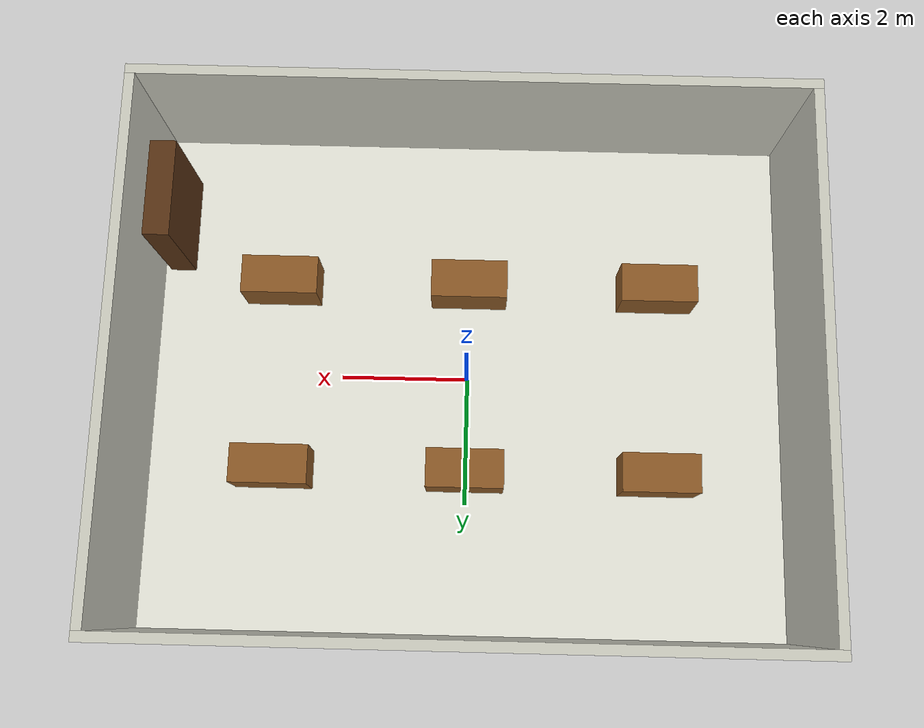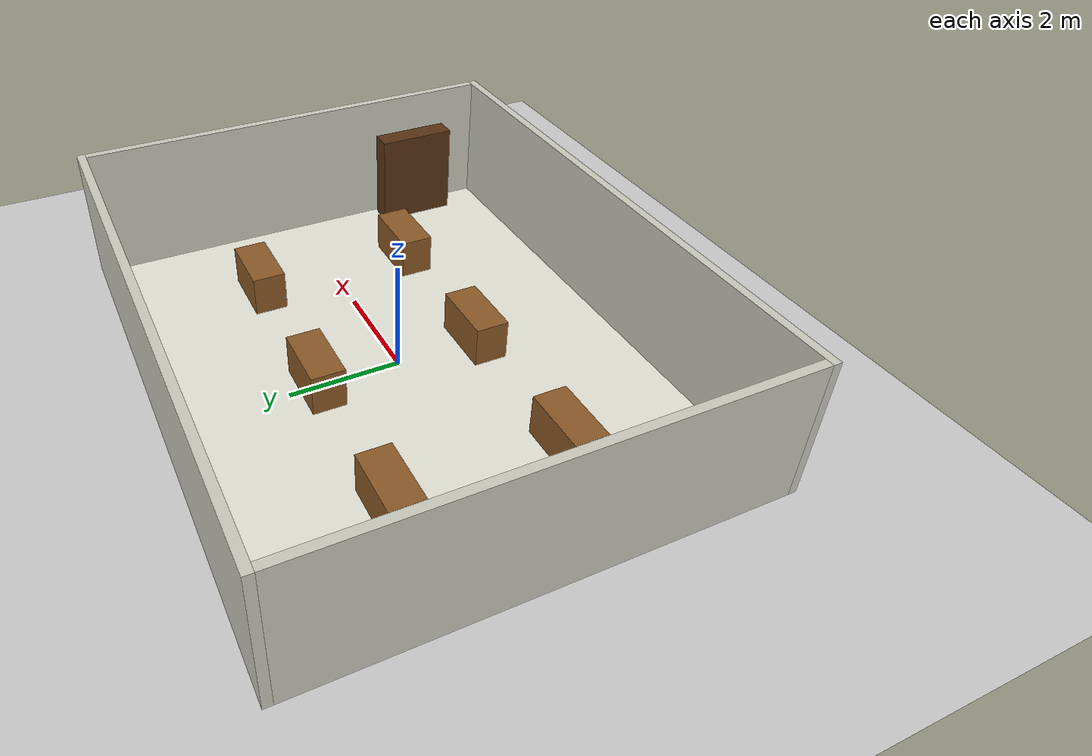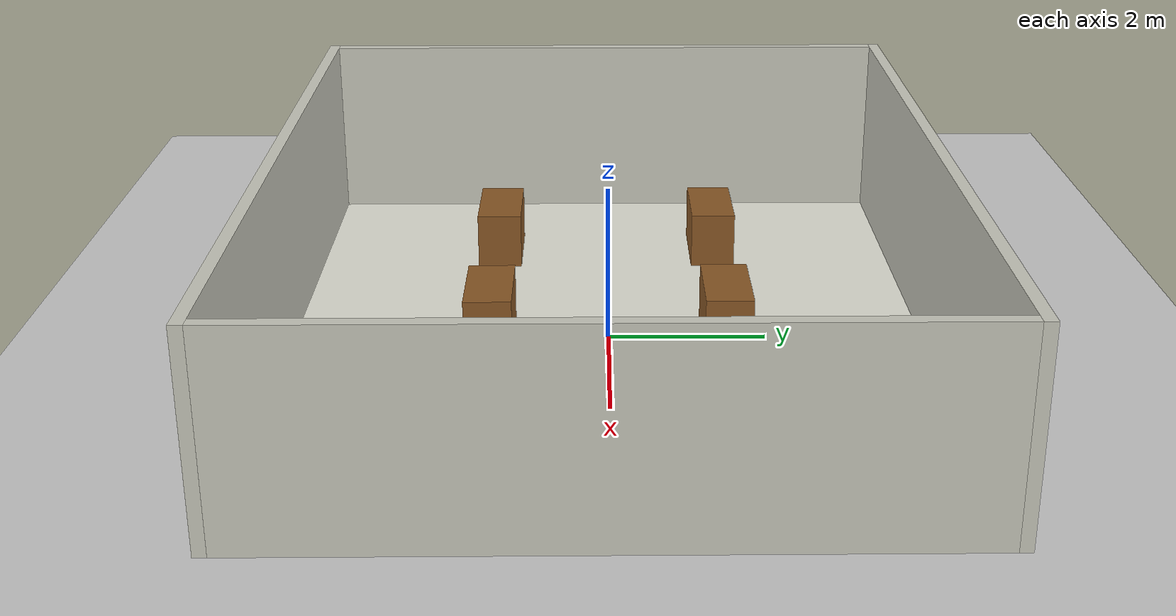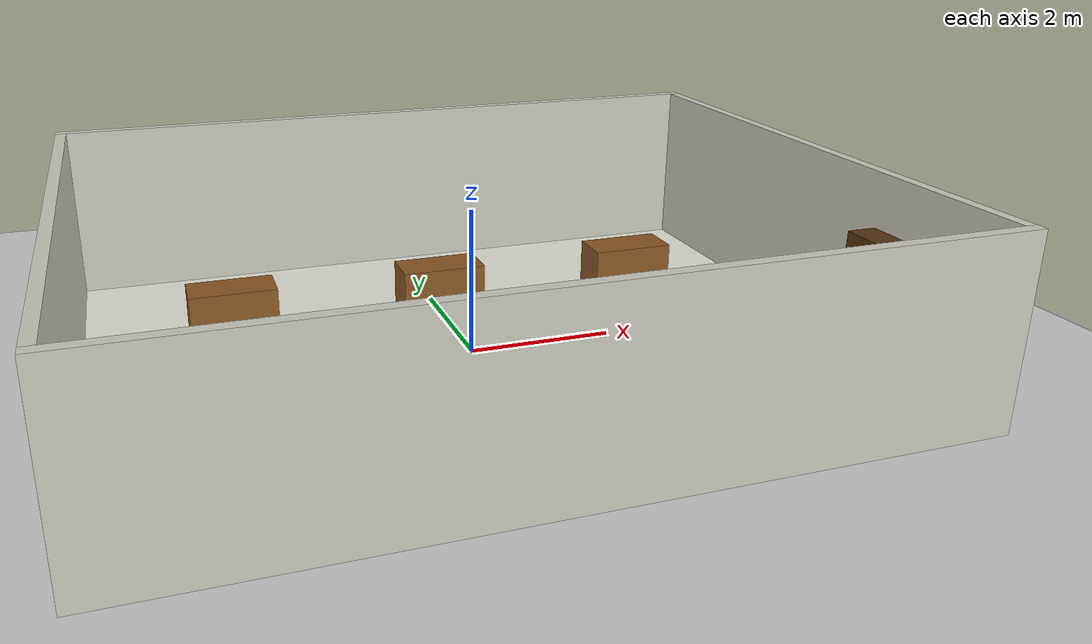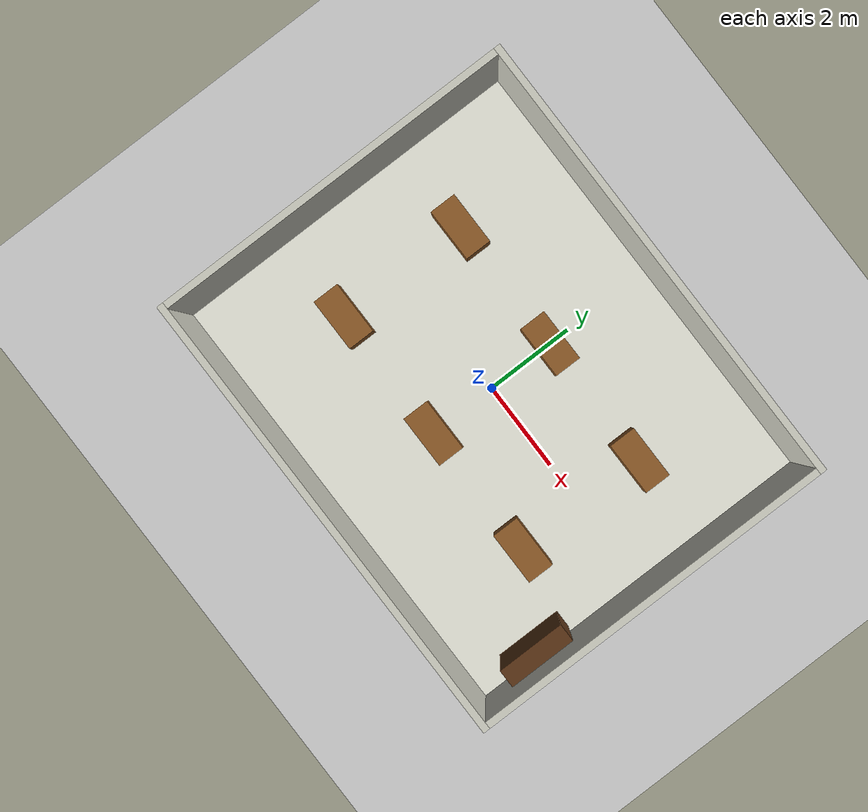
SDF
<?xml version="1.0" ?>
<sdf version="1.6">
  <world name="classroom">

    <!-- ========================== PHYSICS ========================== -->
    <physics type="ode">
      <max_step_size>0.001</max_step_size>
      <real_time_factor>1.0</real_time_factor>
    </physics>

    <!-- ========================== LIGHT ========================== -->
    <include>
      <uri>model://sun</uri>
    </include>

    <!-- ========================== GROUND PLANE ========================== -->
    <include>
      <uri>model://ground_plane</uri>
    </include>

    <!-- ── North Wall (y = +4) ── -->
    <model name="wall_north">
      <static>true</static>
      <pose>0 4.075 1.25 0 0 0</pose>
      <link name="link">
        <collision name="collision">
          <geometry><box><size>10.3 0.15 2.5</size></box></geometry>
        </collision>
        <visual name="visual">
          <geometry><box><size>10.3 0.15 2.5</size></box></geometry>
          <material>
            <ambient>0.8 0.8 0.75 1</ambient>
            <diffuse>0.8 0.8 0.75 1</diffuse>
          </material>
        </visual>
      </link>
    </model>

    <!-- ── South Wall (y = -4) ── -->
    <model name="wall_south">
      <static>true</static>
      <pose>0 -4.075 1.25 0 0 0</pose>
      <link name="link">
        <collision name="collision">
          <geometry><box><size>10.3 0.15 2.5</size></box></geometry>
        </collision>
        <visual name="visual">
          <geometry><box><size>10.3 0.15 2.5</size></box></geometry>
          <material>
            <ambient>0.8 0.8 0.75 1</ambient>
            <diffuse>0.8 0.8 0.75 1</diffuse>
          </material>
        </visual>
      </link>
    </model>

    <!-- ── East Wall (x = +5) ── -->
    <model name="wall_east">
      <static>true</static>
      <pose>5.075 0 1.25 0 0 0</pose>
      <link name="link">
        <collision name="collision">
          <geometry><box><size>0.15 8.0 2.5</size></box></geometry>
        </collision>
        <visual name="visual">
          <geometry><box><size>0.15 8.0 2.5</size></box></geometry>
          <material>
            <ambient>0.8 0.8 0.75 1</ambient>
            <diffuse>0.8 0.8 0.75 1</diffuse>
          </material>
        </visual>
      </link>
    </model>

    <!-- ── West Wall (x = -5) ── -->
    <model name="wall_west">
      <static>true</static>
      <pose>-5.075 0 1.25 0 0 0</pose>
      <link name="link">
        <collision name="collision">
          <geometry><box><size>0.15 8.0 2.5</size></box></geometry>
        </collision>
        <visual name="visual">
          <geometry><box><size>0.15 8.0 2.5</size></box></geometry>
          <material>
            <ambient>0.8 0.8 0.75 1</ambient>
            <diffuse>0.8 0.8 0.75 1</diffuse>
          </material>
        </visual>
      </link>
    </model>

    <!-- ========================== FLOOR ========================== -->
    <model name="floor">
      <static>true</static>
      <pose>0 0 0.001 0 0 0</pose>
      <link name="link">
        <collision name="collision">
          <geometry><box><size>10 8 0.002</size></box></geometry>
        </collision>
        <visual name="visual">
          <geometry><box><size>10 8 0.002</size></box></geometry>
          <material>
            <ambient>0.9 0.9 0.85 1</ambient>
            <diffuse>0.9 0.9 0.85 1</diffuse>
          </material>
        </visual>
      </link>
    </model>

    <!-- Row 1 (y = +1.5) -->
    <model name="desk_1">
      <static>true</static>
      <pose>-3.0 1.5 0.375 0 0 0</pose>
      <link name="link">
        <collision name="collision">
          <geometry><box><size>1.2 0.6 0.75</size></box></geometry>
        </collision>
        <visual name="visual">
          <geometry><box><size>1.2 0.6 0.75</size></box></geometry>
          <material>
            <ambient>0.55 0.35 0.15 1</ambient>
            <diffuse>0.55 0.35 0.15 1</diffuse>
          </material>
        </visual>
      </link>
    </model>

    <model name="desk_2">
      <static>true</static>
      <pose>0.0 1.5 0.375 0 0 0</pose>
      <link name="link">
        <collision name="collision">
          <geometry><box><size>1.2 0.6 0.75</size></box></geometry>
        </collision>
        <visual name="visual">
          <geometry><box><size>1.2 0.6 0.75</size></box></geometry>
          <material>
            <ambient>0.55 0.35 0.15 1</ambient>
            <diffuse>0.55 0.35 0.15 1</diffuse>
          </material>
        </visual>
      </link>
    </model>

    <model name="desk_3">
      <static>true</static>
      <pose>3.0 1.5 0.375 0 0 0</pose>
      <link name="link">
        <collision name="collision">
          <geometry><box><size>1.2 0.6 0.75</size></box></geometry>
        </collision>
        <visual name="visual">
          <geometry><box><size>1.2 0.6 0.75</size></box></geometry>
          <material>
            <ambient>0.55 0.35 0.15 1</ambient>
            <diffuse>0.55 0.35 0.15 1</diffuse>
          </material>
        </visual>
      </link>
    </model>

    <!-- Row 2 (y = -1.5) -->
    <model name="desk_4">
      <static>true</static>
      <pose>-3.0 -1.5 0.375 0 0 0</pose>
      <link name="link">
        <collision name="collision">
          <geometry><box><size>1.2 0.6 0.75</size></box></geometry>
        </collision>
        <visual name="visual">
          <geometry><box><size>1.2 0.6 0.75</size></box></geometry>
          <material>
            <ambient>0.55 0.35 0.15 1</ambient>
            <diffuse>0.55 0.35 0.15 1</diffuse>
          </material>
        </visual>
      </link>
    </model>

    <model name="desk_5">
      <static>true</static>
      <pose>0.0 -1.5 0.375 0 0 0</pose>
      <link name="link">
        <collision name="collision">
          <geometry><box><size>1.2 0.6 0.75</size></box></geometry>
        </collision>
        <visual name="visual">
          <geometry><box><size>1.2 0.6 0.75</size></box></geometry>
          <material>
            <ambient>0.55 0.35 0.15 1</ambient>
            <diffuse>0.55 0.35 0.15 1</diffuse>
          </material>
        </visual>
      </link>
    </model>

    <model name="desk_6">
      <static>true</static>
      <pose>3.0 -1.5 0.375 0 0 0</pose>
      <link name="link">
        <collision name="collision">
          <geometry><box><size>1.2 0.6 0.75</size></box></geometry>
        </collision>
        <visual name="visual">
          <geometry><box><size>1.2 0.6 0.75</size></box></geometry>
          <material>
            <ambient>0.55 0.35 0.15 1</ambient>
            <diffuse>0.55 0.35 0.15 1</diffuse>
          </material>
        </visual>
      </link>
    </model>

    <model name="bookshelf">
      <static>true</static>
      <pose>4.7 -2.5 0.9 0 0 0</pose>
      <link name="link">
        <collision name="collision">
          <geometry><box><size>0.4 1.5 1.8</size></box></geometry>
        </collision>
        <visual name="visual">
          <geometry><box><size>0.4 1.5 1.8</size></box></geometry>
          <material>
            <ambient>0.35 0.2 0.08 1</ambient>
            <diffuse>0.35 0.2 0.08 1</diffuse>
          </material>
        </visual>
      </link>
    </model>

  </world>
</sdf>
